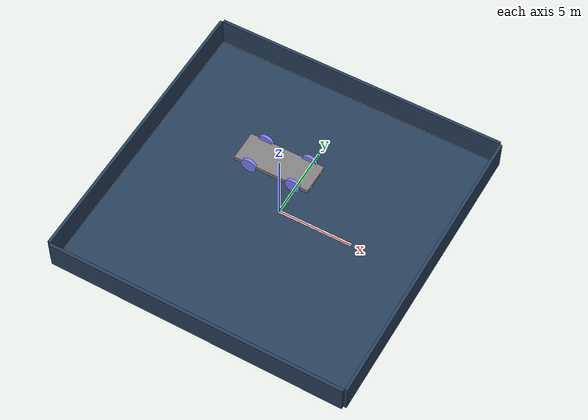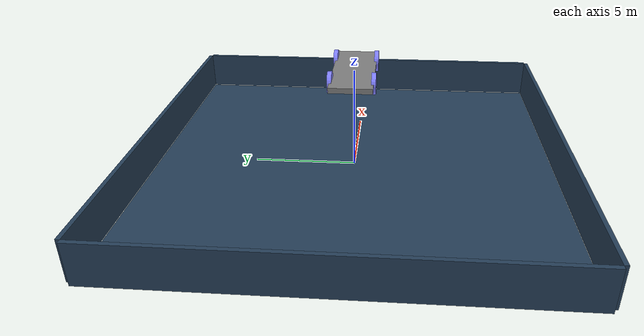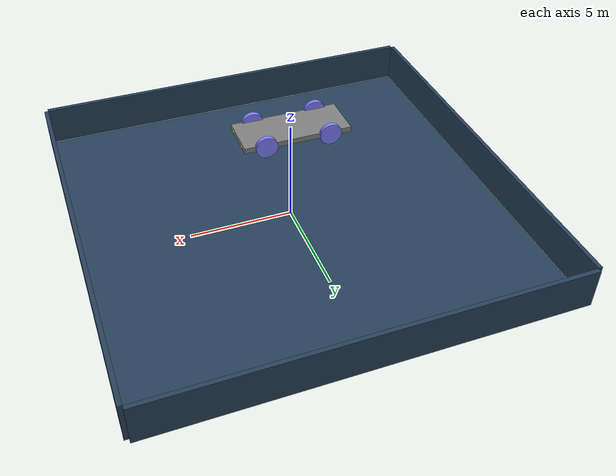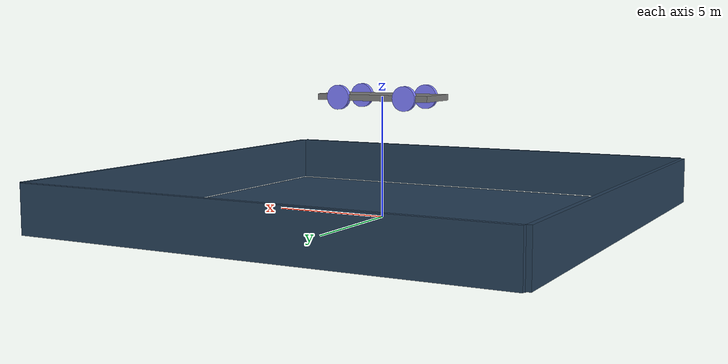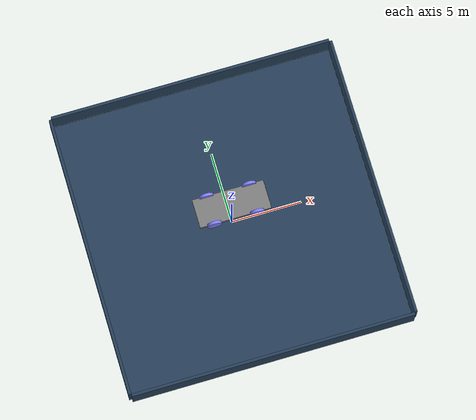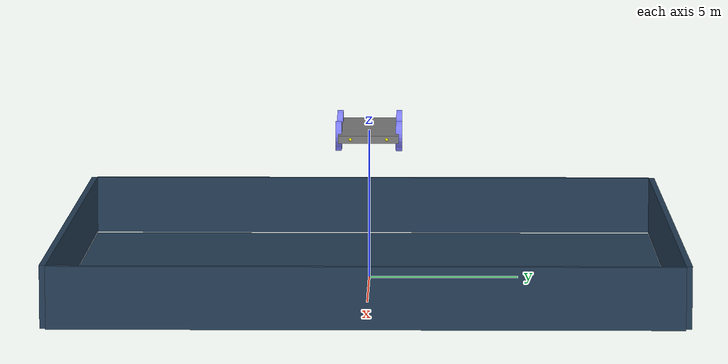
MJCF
<mujoco>
    <worldbody>
    <light dir="0 0 -1" pos="0 0 1000" diffuse="1 1 1" />
    <geom name="main_ground_ground" type="plane" size="10.0 10.0 0.1" material="grid" />
<geom name="main_ground_left" type="box" size="0.1 10.0 1.0" pos="-10.1 0 1.0" material="grid" />
<geom name="main_ground_right" type="box" size="0.1 10.0 1.0" pos="10.1 0 1.0" material="grid" />
<geom name="main_ground_front" type="box" size="10.0 0.1 1.0" pos="0 10.1 1.0" material="grid" />
<geom name="main_ground_back" type="box" size="10.0 0.1 1.0" pos="0 -10.1 1.0" material="grid" />
<camera name="TopDownCam1" pos="0 0 48.2842712474619" euler="0 0 -90" fovy="45" /><body name="car1" pos="0 0 5">
        <freejoint />

        <body name="car1_front_lights" pos="2.5 0 0">
            <body name="car1_front_left_light" pos="0 0.6 0">
                <light dir="1 0 0" diffuse="1 1 1" />
                <geom type="sphere" size="0.05" rgba="1 1 0 1" />
            </body>
            <body name="car1_front_right_light" pos="0 -0.6 0">
                <light dir="1 0 0" diffuse="1 1 1" />
                <geom type="sphere" size="0.05" rgba="1 1 0 1" />
            </body>
        </body>

        <body>
            <geom name="car1_chasis" type="box" size="2.5 1.0 0.125" mass="1500" />

            <body name="car1_left_front_wheel" pos="1.5 -1.0 0.0" zaxis="0 1 0">
                <joint name="car1_left_front turn" type="hinge" axis="0 1 0" limited="true" range="-45 45" />
                <joint name="car1_left_front" />
                <geom type="cylinder" size="0.5 0.1" rgba=".5 .5 1 1" mass="30" />
            </body>

            <body name="car1_right front wheel" pos="1.5 1.0 0.0" zaxis="0 1 0">
                <joint name="car1_right_front turn" type="hinge" axis="0 1 0" limited="true" range="-45 45" />
                <joint name="car1_right_front" />
                <geom type="cylinder" size="0.5 0.1" rgba=".5 .5 1 1" mass="30" />
            </body>

            <body name="car1_left_back_wheel" pos="-1.5 -1.0 0.0" zaxis="0 1 0">
                <joint name="car1_left_back" />
                <geom type="cylinder" size="0.5 0.1" rgba=".5 .5 1 1" mass="30" />
            </body>

            <body name="car1_right_back_wheel" pos="-1.5 1.0 0.0" zaxis="0 1 0">
                <joint name="car1_right_back" />
                <geom type="cylinder" size="0.5 0.1" rgba=".5 .5 1 1" mass="30" />
            </body>

        </body>

    </body></worldbody>
<asset>
        <texture name="grid" type="2d" builtin="checker" width="512" height="512" rgb1=".1 .2 .3" rgb2=".2 .3 .4" />
        <material name="grid" texture="grid" texrepeat="1 1" texuniform="true" reflectance=".2" />
</asset></mujoco>
